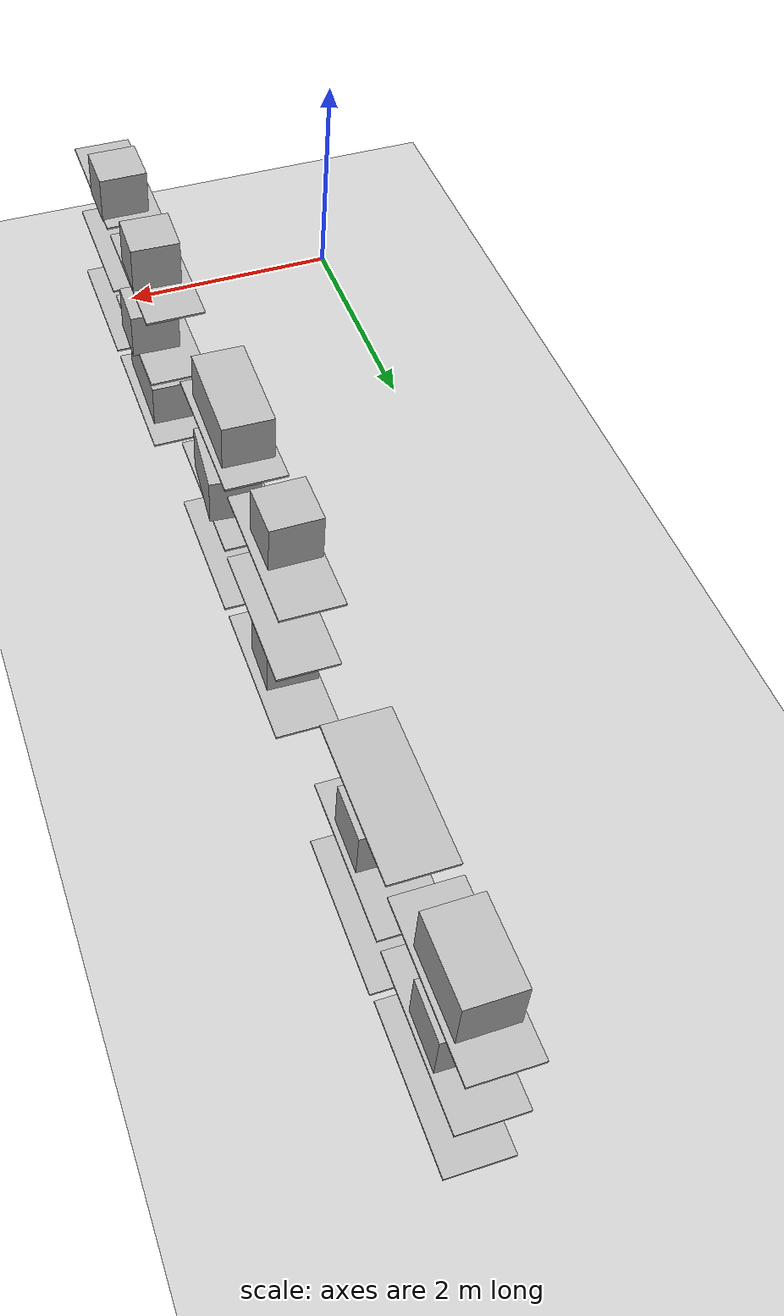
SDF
<sdf version="1.7">
 <world name="default">
  <model name="ground_plane">
   <static>1</static>
   <link name="link">
    <collision name="collision">
     <geometry><plane><normal>0 0 1</normal><size>300 300</size></plane></geometry>
     <surface>
      <contact><collide_bitmask>65535</collide_bitmask></contact>
      <friction><ode><mu>100</mu><mu2>50</mu2></ode></friction>
     </surface>
    </collision>
    <visual name="visual">
     <geometry><plane><normal>0 0 1</normal><size>100 100</size></plane></geometry>
     <material>
      <script><uri>file://media/materials/scripts/gazebo.material</uri><name>Gazebo/Grey</name></script>
     </material>
    </visual>
   </link>
  </model>
  <model name="unit_box">
   <link name="link">
    <inertial>
     <mass>0.00922354</mass>
     <inertia>
      <ixx>0.00104733</ixx>
      <ixy>0</ixy>
      <ixz>0</ixz>
      <iyy>0.000178965</iyy>
      <iyz>0</iyz>
      <izz>0.00122588</izz>
     </inertia>
    </inertial>
    <visual name="visual">
     <geometry><box><size>0.482252 1.16718 0.016436</size></box></geometry>
     <material>
      <script>
       <uri>model://unit_box/materials/scripts</uri>
       <uri>model://unit_box/materials/textures</uri>
       <name>shelveMat/Diffuse</name>
      </script>
      <shader type="pixel"/>
     </material>
    </visual>
    <collision name="collision"><geometry><box><size>0.482252 1.16718 0.016436</size></box></geometry></collision>
   </link>
   <static>1</static>
   <pose>2.18688 8.43309 2.00374 0 -1e-06 -0.002445</pose>
  </model>
  <model name="Caja">
   <link name="link">
    <pose>0 0 0.25 0 -0 0</pose>
    <inertial>
     <mass>0.39</mass>
     <inertia><ixx>0.00058</ixx><ixy>0</ixy><ixz>0</ixz><iyy>0.00058</iyy><iyz>0</iyz><izz>0.00019</izz></inertia>
    </inertial>
    <collision name="collision"><geometry><box><size>0.4 0.4 0.4</size></box></geometry></collision>
    <visual name="visual">
     <geometry><box><size>0.4 0.4 0.4</size></box></geometry>
     <material>
      <script>
       <uri>model://Caja/materials/scripts</uri>
       <uri>model://Caja/materials/textures</uri>
       <name>Caja/Diffuse</name>
      </script>
     </material>
    </visual>
   </link>
   <pose>2.26644 1.06331 1.95102 -7e-06 -1.2e-05 -0.001599</pose>
   <static>1</static>
  </model>
  <model name="CuboQR2">
   <link name="link">
    <pose>0 0 0.25 0 -0 0</pose>
    <inertial>
     <mass>0.39</mass>
     <inertia><ixx>0.00058</ixx><ixy>0</ixy><ixz>0</ixz><iyy>0.00058</iyy><iyz>0</iyz><izz>0.00019</izz></inertia>
    </inertial>
    <collision name="collision"><geometry><box><size>0.4 0.4 0.4</size></box></geometry></collision>
    <visual name="visual">
     <geometry><box><size>0.4 0.4 0.4</size></box></geometry>
     <material>
      <script>
       <uri>model://Caja/materials/scripts</uri>
       <uri>model://Caja/materials/textures</uri>
       <name>Caja/Diffuse</name>
      </script>
     </material>
    </visual>
   </link>
   <pose>2.25333 2.04265 1.96691 8e-06 4.1e-05 -0.030962</pose>
   <static>1</static>
  </model>
  <model name="CuboQR3">
   <link name="link">
    <pose>0 0 0.25 0 -0 0</pose>
    <inertial>
     <mass>0.39</mass>
     <inertia><ixx>0.00058</ixx><ixy>0</ixy><ixz>0</ixz><iyy>0.00058</iyy><iyz>0</iyz><izz>0.00019</izz></inertia>
    </inertial>
    <collision name="collision"><geometry><box><size>0.4 0.4 0.4</size></box></geometry></collision>
    <visual name="visual">
     <geometry><box><size>0.4 0.4 0.4</size></box></geometry>
     <material>
      <script>
       <uri>model://Caja/materials/scripts</uri>
       <uri>model://Caja/materials/textures</uri>
       <name>Caja/Diffuse</name>
      </script>
     </material>
    </visual>
   </link>
   <pose>2.29133 2.04465 1.28252 -1e-06 -8e-06 -0.026338</pose>
   <static>1</static>
  </model>
  <model name="CuboQR5">
   <link name="link">
    <pose>0 0 0.25 0 -0 0</pose>
    <inertial>
     <mass>0.39</mass>
     <inertia><ixx>0.00058</ixx><ixy>0</ixy><ixz>0</ixz><iyy>0.00058</iyy><iyz>0</iyz><izz>0.00019</izz></inertia>
    </inertial>
    <collision name="collision"><geometry><box><size>0.4 0.4 0.4</size></box></geometry></collision>
    <visual name="visual">
     <geometry><box><size>0.4 0.4 0.4</size></box></geometry>
     <material>
      <script>
       <uri>model://Caja/materials/scripts</uri>
       <uri>model://Caja/materials/textures</uri>
       <name>Caja/Diffuse</name>
      </script>
     </material>
    </visual>
   </link>
   <pose>2.20203 8.45266 1.29226 2.2e-05 -5.4e-05 -0.012577</pose>
   <static>1</static>
  </model>
  <model name="CuboQR6">
   <link name="link">
    <pose>0 0 0.25 0 -0 0</pose>
    <inertial>
     <mass>0.39</mass>
     <inertia><ixx>0.00058</ixx><ixy>0</ixy><ixz>0</ixz><iyy>0.00058</iyy><iyz>0</iyz><izz>0.00019</izz></inertia>
    </inertial>
    <collision name="collision"><geometry><box><size>0.4 0.4 0.4</size></box></geometry></collision>
    <visual name="visual">
     <geometry><box><size>0.4 0.4 0.4</size></box></geometry>
     <material>
      <script>
       <uri>model://Caja/materials/scripts</uri>
       <uri>model://Caja/materials/textures</uri>
       <name>Caja/Diffuse</name>
      </script>
     </material>
    </visual>
   </link>
   <pose>2.1851 7.10543 1.28642 2e-06 -1.1e-05 -0.010095</pose>
   <static>1</static>
  </model>
  <model name="CuboQR8">
   <link name="link">
    <pose>0 0 0.25 0 -0 0</pose>
    <inertial>
     <mass>0.39</mass>
     <inertia><ixx>0.00058</ixx><ixy>0</ixy><ixz>0</ixz><iyy>0.00058</iyy><iyz>0</iyz><izz>0.00019</izz></inertia>
    </inertial>
    <collision name="collision"><geometry><box><size>0.4 0.8 0.4</size></box></geometry></collision>
    <visual name="visual">
     <geometry><box><size>0.4 0.8 0.4</size></box></geometry>
     <material>
      <script>
       <uri>model://Caja/materials/scripts</uri>
       <uri>model://Caja/materials/textures</uri>
       <name>Caja/Diffuse</name>
      </script>
     </material>
    </visual>
   </link>
   <pose>2.14027 3.91275 1.94922 1.1e-05 -2e-06 -0.016923</pose>
   <static>1</static>
  </model>
  <model name="CuboQR9">
   <link name="link">
    <pose>0 0 0.25 0 -0 0</pose>
    <inertial>
     <mass>0.39</mass>
     <inertia><ixx>0.00058</ixx><ixy>0</ixy><ixz>0</ixz><iyy>0.00058</iyy><iyz>0</iyz><izz>0.00019</izz></inertia>
    </inertial>
    <collision name="collision"><geometry><box><size>0.4 0.4 0.4</size></box></geometry></collision>
    <visual name="visual">
     <geometry><box><size>0.4 0.4 0.4</size></box></geometry>
     <material>
      <script>
       <uri>model://Caja/materials/scripts</uri>
       <uri>model://Caja/materials/textures</uri>
       <name>Caja/Diffuse</name>
      </script>
     </material>
    </visual>
   </link>
   <pose>2.12545 5.14181 0.595564 -2.3e-05 -4e-06 -0.026435</pose>
   <static>1</static>
  </model>
  <model name="CuboQR10">
   <link name="link">
    <pose>0 0 0.25 0 -0 0</pose>
    <inertial>
     <mass>0.39</mass>
     <inertia><ixx>0.00058</ixx><ixy>0</ixy><ixz>0</ixz><iyy>0.00058</iyy><iyz>0</iyz><izz>0.00019</izz></inertia>
    </inertial>
    <collision name="collision"><geometry><box><size>0.4 0.4 0.4</size></box></geometry></collision>
    <visual name="visual">
     <geometry><box><size>0.4 0.4 0.4</size></box></geometry>
     <material>
      <script>
       <uri>model://Caja/materials/scripts</uri>
       <uri>model://Caja/materials/textures</uri>
       <name>Caja/Diffuse</name>
      </script>
     </material>
    </visual>
   </link>
   <pose>2.12667 5.11458 1.95849 1.8e-05 -7e-06 0.006396</pose>
   <static>1</static>
  </model>
  <model name="CuboQR30">
   <link name="link">
    <pose>0 0 0.25 0 -0 0</pose>
    <inertial>
     <mass>0.39</mass>
     <inertia><ixx>0.00058</ixx><ixy>0</ixy><ixz>0</ixz><iyy>0.00058</iyy><iyz>0</iyz><izz>0.00019</izz></inertia>
    </inertial>
    <collision name="collision"><geometry><box><size>0.4 0.6 0.4</size></box></geometry></collision>
    <visual name="visual">
     <geometry><box><size>0.4 0.6 0.4</size></box></geometry>
     <material>
      <script>
       <uri>model://Caja/materials/scripts</uri>
       <uri>model://Caja/materials/textures</uri>
       <name>Caja/Diffuse</name>
      </script>
     </material>
    </visual>
   </link>
   <pose>2.19014 3.91484 1.28838 1e-05 -7e-06 -0.095429</pose>
   <static>1</static>
  </model>
  <model name="CuboQR32">
   <link name="link">
    <pose>0 0 0.25 0 -0 0</pose>
    <inertial>
     <mass>0.39</mass>
     <inertia><ixx>0.00058</ixx><ixy>0</ixy><ixz>0</ixz><iyy>0.00058</iyy><iyz>0</iyz><izz>0.00019</izz></inertia>
    </inertial>
    <collision name="collision"><geometry><box><size>0.4 0.6 0.4</size></box></geometry></collision>
    <visual name="visual">
     <geometry><box><size>0.4 0.6 0.4</size></box></geometry>
     <material>
      <script>
       <uri>model://Caja/materials/scripts</uri>
       <uri>model://Caja/materials/textures</uri>
       <name>Caja/Diffuse</name>
      </script>
     </material>
    </visual>
   </link>
   <pose>2.19132 8.47328 1.96092 5e-06 -8e-06 0.005056</pose>
   <static>1</static>
  </model>
  <model name="Plano4_0">
   <link name="link">
    <gravity>0</gravity>
    <pose>0 0 0.25 0 -0 0</pose>
    <inertial>
     <mass>1e-06</mass>
     <inertia><ixx>0.00058</ixx><ixy>0</ixy><ixz>0</ixz><iyy>0.00058</iyy><iyz>0</iyz><izz>0.00019</izz></inertia>
    </inertial>
    <collision name="collision"><geometry><box><size>0.2 1e-06 0.2</size></box></geometry></collision>
    <visual name="visual">
     <geometry><box><size>0.2 1e-06 0.2</size></box></geometry>
     <material>
      <script>
       <uri>model://Plano4/materials/scripts</uri>
       <uri>model://Plano4/materials/textures</uri>
       <name>Plano4/Diffuse</name>
      </script>
     </material>
    </visual>
   </link>
   <pose>1.978 2.02492 0.597619 0 0 -1.59006</pose>
  </model>
  <model name="Plano9">
   <link name="link">
    <gravity>0</gravity>
    <pose>0 0 0.25 0 -0 0</pose>
    <inertial>
     <mass>1e-06</mass>
     <inertia><ixx>0.00058</ixx><ixy>0</ixy><ixz>0</ixz><iyy>0.00058</iyy><iyz>0</iyz><izz>0.00019</izz></inertia>
    </inertial>
    <collision name="collision"><geometry><box><size>0.2 1e-06 0.2</size></box></geometry></collision>
    <visual name="visual">
     <geometry><box><size>0.2 1e-06 0.2</size></box></geometry>
     <material>
      <script>
       <uri>model://Plano9/materials/scripts</uri>
       <uri>model://Plano9/materials/textures</uri>
       <name>Plano9/Diffuse</name>
      </script>
     </material>
    </visual>
   </link>
   <pose>1.92313 5.13661 0.621101 0 0 -1.58642</pose>
  </model>
  <model name="CuboQR8_clone_0">
   <link name="link">
    <pose>0 0 0.25 0 -0 0</pose>
    <inertial>
     <mass>0.39</mass>
     <inertia><ixx>0.00058</ixx><ixy>0</ixy><ixz>0</ixz><iyy>0.00058</iyy><iyz>0</iyz><izz>0.00019</izz></inertia>
    </inertial>
    <collision name="collision"><geometry><box><size>0.4 0.8 0.4</size></box></geometry></collision>
    <visual name="visual">
     <geometry><box><size>0.4 0.8 0.4</size></box></geometry>
     <material>
      <script>
       <uri>model://Caja/materials/scripts</uri>
       <uri>model://Caja/materials/textures</uri>
       <name>Caja/Diffuse</name>
      </script>
     </material>
    </visual>
   </link>
   <pose>2.18311 1.99541 0.596214 -1e-05 1e-06 -0.016913</pose>
   <static>1</static>
  </model>
  <model name="Plano5">
   <link name="link">
    <gravity>0</gravity>
    <pose>0 0 0.25 0 -0 0</pose>
    <inertial>
     <mass>1e-06</mass>
     <inertia><ixx>0.00058</ixx><ixy>0</ixy><ixz>0</ixz><iyy>0.00058</iyy><iyz>0</iyz><izz>0.00019</izz></inertia>
    </inertial>
    <collision name="collision"><geometry><box><size>0.2 1e-06 0.2</size></box></geometry></collision>
    <visual name="visual">
     <geometry><box><size>0.2 1e-06 0.2</size></box></geometry>
     <material>
      <script>
       <uri>model://Plano5/materials/scripts</uri>
       <uri>model://Plano5/materials/textures</uri>
       <name>Plano5/Diffuse</name>
      </script>
     </material>
    </visual>
   </link>
   <pose>2.00061 8.43579 1.29742 0 0 -1.58596</pose>
  </model>
  <model name="Plano6">
   <link name="link">
    <gravity>0</gravity>
    <pose>0 0 0.25 0 -0 0</pose>
    <inertial>
     <mass>1e-06</mass>
     <inertia><ixx>0.00058</ixx><ixy>0</ixy><ixz>0</ixz><iyy>0.00058</iyy><iyz>0</iyz><izz>0.00019</izz></inertia>
    </inertial>
    <collision name="collision"><geometry><box><size>0.2 1e-06 0.2</size></box></geometry></collision>
    <visual name="visual">
     <geometry><box><size>0.2 1e-06 0.2</size></box></geometry>
     <material>
      <script>
       <uri>model://Plano6/materials/scripts</uri>
       <uri>model://Plano6/materials/textures</uri>
       <name>Plano6/Diffuse</name>
      </script>
     </material>
    </visual>
   </link>
   <pose>1.9843 7.06559 1.29818 0 0 -1.58047</pose>
  </model>
  <model name="Plano30">
   <link name="link">
    <gravity>0</gravity>
    <pose>0 0 0.25 0 -0 0</pose>
    <inertial>
     <mass>1e-06</mass>
     <inertia><ixx>0.00058</ixx><ixy>0</ixy><ixz>0</ixz><iyy>0.00058</iyy><iyz>0</iyz><izz>0.00019</izz></inertia>
    </inertial>
    <collision name="collision"><geometry><box><size>0.2 1e-06 0.2</size></box></geometry></collision>
    <visual name="visual">
     <geometry><box><size>0.2 1e-06 0.2</size></box></geometry>
     <material>
      <script>
       <uri>model://Plano30/materials/scripts</uri>
       <uri>model://Plano30/materials/textures</uri>
       <name>Plano30/Diffuse</name>
      </script>
     </material>
    </visual>
   </link>
   <pose>1.9915 3.94414 1.31063 0 0 -1.66883</pose>
  </model>
  <model name="Plano3">
   <link name="link">
    <gravity>0</gravity>
    <pose>0 0 0.25 0 -0 0</pose>
    <inertial>
     <mass>1e-06</mass>
     <inertia><ixx>0.00058</ixx><ixy>0</ixy><ixz>0</ixz><iyy>0.00058</iyy><iyz>0</iyz><izz>0.00019</izz></inertia>
    </inertial>
    <collision name="collision"><geometry><box><size>0.2 1e-06 0.2</size></box></geometry></collision>
    <visual name="visual">
     <geometry><box><size>0.2 1e-06 0.2</size></box></geometry>
     <material>
      <script>
       <uri>model://Plano3/materials/scripts</uri>
       <uri>model://Plano3/materials/textures</uri>
       <name>Plano3/Diffuse</name>
      </script>
     </material>
    </visual>
   </link>
   <pose>2.06585 2.0112 1.29904 0 0 -1.60488</pose>
  </model>
  <model name="Plano2">
   <link name="link">
    <gravity>0</gravity>
    <pose>0 0 0.25 0 -0 0</pose>
    <inertial>
     <mass>1e-06</mass>
     <inertia><ixx>0.00058</ixx><ixy>0</ixy><ixz>0</ixz><iyy>0.00058</iyy><iyz>0</iyz><izz>0.00019</izz></inertia>
    </inertial>
    <collision name="collision"><geometry><box><size>0.2 1e-06 0.2</size></box></geometry></collision>
    <visual name="visual">
     <geometry><box><size>0.2 1e-06 0.2</size></box></geometry>
     <material>
      <script>
       <uri>model://Plano2/materials/scripts</uri>
       <uri>model://Plano2/materials/textures</uri>
       <name>Plano2/Diffuse</name>
      </script>
     </material>
    </visual>
   </link>
   <pose>2.05247 2.02975 1.96021 0 0 -1.6005</pose>
  </model>
  <model name="Plano">
   <link name="link">
    <gravity>0</gravity>
    <pose>0 0 0.25 0 -0 0</pose>
    <inertial>
     <mass>1e-06</mass>
     <inertia><ixx>0.00058</ixx><ixy>0</ixy><ixz>0</ixz><iyy>0.00058</iyy><iyz>0</iyz><izz>0.00019</izz></inertia>
    </inertial>
    <collision name="collision"><geometry><box><size>0.2 1e-06 0.2</size></box></geometry></collision>
    <visual name="visual">
     <geometry><box><size>0.2 1e-06 0.2</size></box></geometry>
     <material>
      <script>
       <uri>model://Plano/materials/scripts</uri>
       <uri>model://Plano/materials/textures</uri>
       <name>Plano/Diffuse</name>
      </script>
     </material>
    </visual>
   </link>
   <pose>2.06285 1.03786 1.95496 0 0 -1.57561</pose>
  </model>
  <model name="Plano8">
   <link name="link">
    <gravity>0</gravity>
    <pose>0 0 0.25 0 -0 0</pose>
    <inertial>
     <mass>1e-06</mass>
     <inertia><ixx>0.00058</ixx><ixy>0</ixy><ixz>0</ixz><iyy>0.00058</iyy><iyz>0</iyz><izz>0.00019</izz></inertia>
    </inertial>
    <collision name="collision"><geometry><box><size>0.2 1e-06 0.2</size></box></geometry></collision>
    <visual name="visual">
     <geometry><box><size>0.2 1e-06 0.2</size></box></geometry>
     <material>
      <script>
       <uri>model://Plano8/materials/scripts</uri>
       <uri>model://Plano8/materials/textures</uri>
       <name>Plano8/Diffuse</name>
      </script>
     </material>
    </visual>
   </link>
   <pose>1.93511 3.88666 1.99089 0 0 -1.57894</pose>
  </model>
  <model name="Plano10">
   <link name="link">
    <gravity>0</gravity>
    <pose>0 0 0.25 0 -0 0</pose>
    <inertial>
     <mass>1e-06</mass>
     <inertia><ixx>0.00058</ixx><ixy>0</ixy><ixz>0</ixz><iyy>0.00058</iyy><iyz>0</iyz><izz>0.00019</izz></inertia>
    </inertial>
    <collision name="collision"><geometry><box><size>0.2 1e-06 0.2</size></box></geometry></collision>
    <visual name="visual">
     <geometry><box><size>0.2 1e-06 0.2</size></box></geometry>
     <material>
      <script>
       <uri>model://Plano10/materials/scripts</uri>
       <uri>model://Plano10/materials/textures</uri>
       <name>Plano10/Diffuse</name>
      </script>
     </material>
    </visual>
   </link>
   <pose>1.92521 5.09842 1.98483 0 0 -1.55773</pose>
  </model>
  <model name="Plano32">
   <link name="link">
    <gravity>0</gravity>
    <pose>0 0 0.25 0 -0 0</pose>
    <inertial>
     <mass>1e-06</mass>
     <inertia><ixx>0.00058</ixx><ixy>0</ixy><ixz>0</ixz><iyy>0.00058</iyy><iyz>0</iyz><izz>0.00019</izz></inertia>
    </inertial>
    <collision name="collision"><geometry><box><size>0.2 1e-06 0.2</size></box></geometry></collision>
    <visual name="visual">
     <geometry><box><size>0.2 1e-06 0.2</size></box></geometry>
     <material>
      <script>
       <uri>model://Plano32/materials/scripts</uri>
       <uri>model://Plano32/materials/textures</uri>
       <name>Plano32/Diffuse</name>
      </script>
     </material>
    </visual>
   </link>
   <pose>1.98912 8.41841 1.97803 0 0 -1.58529</pose>
  </model>
  <model name="unit_box_clone">
   <link name="link">
    <inertial>
     <mass>0.00922354</mass>
     <inertia>
      <ixx>0.00104733</ixx>
      <ixy>0</ixy>
      <ixz>0</ixz>
      <iyy>0.000178965</iyy>
      <iyz>0</iyz>
      <izz>0.00122588</izz>
     </inertia>
    </inertial>
    <visual name="visual">
     <geometry><box><size>0.482252 1.16718 0.016436</size></box></geometry>
     <material>
      <script>
       <uri>model://unit_box/materials/scripts</uri>
       <uri>model://unit_box/materials/textures</uri>
       <name>shelveMat/Diffuse</name>
      </script>
      <shader type="pixel"/>
     </material>
    </visual>
    <collision name="collision"><geometry><box><size>0.482252 1.16718 0.016436</size></box></geometry></collision>
   </link>
   <static>1</static>
   <pose>2.16612 7.19524 2.00375 0 -1e-06 -0.002445</pose>
  </model>
  <model name="unit_box_clone_clone">
   <link name="link">
    <inertial>
     <mass>0.00922354</mass>
     <inertia>
      <ixx>0.00104733</ixx>
      <ixy>0</ixy>
      <ixz>0</ixz>
      <iyy>0.000178965</iyy>
      <iyz>0</iyz>
      <izz>0.00122588</izz>
     </inertia>
    </inertial>
    <visual name="visual">
     <geometry><box><size>0.482252 1.16718 0.016436</size></box></geometry>
     <material>
      <script>
       <uri>model://unit_box/materials/scripts</uri>
       <uri>model://unit_box/materials/textures</uri>
       <name>shelveMat/Diffuse</name>
      </script>
      <shader type="pixel"/>
     </material>
    </visual>
    <collision name="collision"><geometry><box><size>0.482252 1.16718 0.016436</size></box></geometry></collision>
   </link>
   <static>1</static>
   <pose>2.15094 5.16802 2.00375 0 -1e-06 -0.002445</pose>
  </model>
  <model name="unit_box_clone_clone_clone">
   <link name="link">
    <inertial>
     <mass>0.00922354</mass>
     <inertia>
      <ixx>0.00104733</ixx>
      <ixy>0</ixy>
      <ixz>0</ixz>
      <iyy>0.000178965</iyy>
      <iyz>0</iyz>
      <izz>0.00122588</izz>
     </inertia>
    </inertial>
    <visual name="visual">
     <geometry><box><size>0.482252 1.16718 0.016436</size></box></geometry>
     <material>
      <script>
       <uri>model://unit_box/materials/scripts</uri>
       <uri>model://unit_box/materials/textures</uri>
       <name>shelveMat/Diffuse</name>
      </script>
      <shader type="pixel"/>
     </material>
    </visual>
    <collision name="collision"><geometry><box><size>0.482252 1.16718 0.016436</size></box></geometry></collision>
   </link>
   <static>1</static>
   <pose>2.14649 3.9345 2.00375 0 -1e-06 -0.002445</pose>
  </model>
  <model name="unit_box_clone_clone_clone_clone">
   <link name="link">
    <inertial>
     <mass>0.00922354</mass>
     <inertia>
      <ixx>0.00104733</ixx>
      <ixy>0</ixy>
      <ixz>0</ixz>
      <iyy>0.000178965</iyy>
      <iyz>0</iyz>
      <izz>0.00122588</izz>
     </inertia>
    </inertial>
    <visual name="visual">
     <geometry><box><size>0.482252 1.16718 0.016436</size></box></geometry>
     <material>
      <script>
       <uri>model://unit_box/materials/scripts</uri>
       <uri>model://unit_box/materials/textures</uri>
       <name>shelveMat/Diffuse</name>
      </script>
      <shader type="pixel"/>
     </material>
    </visual>
    <collision name="collision"><geometry><box><size>0.482252 1.16718 0.016436</size></box></geometry></collision>
   </link>
   <static>1</static>
   <pose>2.21591 2.05831 2.00375 0 -1e-06 -0.002445</pose>
  </model>
  <model name="unit_box_clone_clone_clone_clone_0">
   <link name="link">
    <inertial>
     <mass>0.00922354</mass>
     <inertia>
      <ixx>0.00104733</ixx>
      <ixy>0</ixy>
      <ixz>0</ixz>
      <iyy>0.000178965</iyy>
      <iyz>0</iyz>
      <izz>0.00122588</izz>
     </inertia>
    </inertial>
    <visual name="visual">
     <geometry><box><size>0.482252 1.16718 0.016436</size></box></geometry>
     <material>
      <script>
       <uri>model://unit_box/materials/scripts</uri>
       <uri>model://unit_box/materials/textures</uri>
       <name>shelveMat/Diffuse</name>
      </script>
      <shader type="pixel"/>
     </material>
    </visual>
    <collision name="collision"><geometry><box><size>0.482252 1.16718 0.016436</size></box></geometry></collision>
   </link>
   <static>1</static>
   <pose>2.21542 0.798436 2.00375 0 -1e-06 -0.002445</pose>
  </model>
  <model name="unit_box_clone_clone_clone_clone_1">
   <link name="link">
    <inertial>
     <mass>0.00922354</mass>
     <inertia>
      <ixx>0.00104733</ixx>
      <ixy>0</ixy>
      <ixz>0</ixz>
      <iyy>0.000178965</iyy>
      <iyz>0</iyz>
      <izz>0.00122588</izz>
     </inertia>
    </inertial>
    <visual name="visual">
     <geometry><box><size>0.482252 1.16718 0.016436</size></box></geometry>
     <material>
      <script>
       <uri>model://unit_box/materials/scripts</uri>
       <uri>model://unit_box/materials/textures</uri>
       <name>shelveMat/Diffuse</name>
      </script>
      <shader type="pixel"/>
     </material>
    </visual>
    <collision name="collision"><geometry><box><size>0.482252 1.16718 0.016436</size></box></geometry></collision>
   </link>
   <static>1</static>
   <pose>2.1868 8.43502 1.33671 0 -1e-06 -0.002445</pose>
  </model>
  <model name="unit_box_clone_clone_clone_clone_1_clone">
   <link name="link">
    <inertial>
     <mass>0.00922354</mass>
     <inertia>
      <ixx>0.00104733</ixx>
      <ixy>0</ixy>
      <ixz>0</ixz>
      <iyy>0.000178965</iyy>
      <iyz>0</iyz>
      <izz>0.00122588</izz>
     </inertia>
    </inertial>
    <visual name="visual">
     <geometry><box><size>0.482252 1.16718 0.016436</size></box></geometry>
     <material>
      <script>
       <uri>model://unit_box/materials/scripts</uri>
       <uri>model://unit_box/materials/textures</uri>
       <name>shelveMat/Diffuse</name>
      </script>
      <shader type="pixel"/>
     </material>
    </visual>
    <collision name="collision"><geometry><box><size>0.482252 1.16718 0.016436</size></box></geometry></collision>
   </link>
   <static>1</static>
   <pose>2.18219 7.19631 1.33212 0 -1e-06 -0.002445</pose>
  </model>
  <model name="unit_box_clone_clone_clone_clone_1_clone_0">
   <link name="link">
    <inertial>
     <mass>0.00922354</mass>
     <inertia>
      <ixx>0.00104733</ixx>
      <ixy>0</ixy>
      <ixz>0</ixz>
      <iyy>0.000178965</iyy>
      <iyz>0</iyz>
      <izz>0.00122588</izz>
     </inertia>
    </inertial>
    <visual name="visual">
     <geometry><box><size>0.482252 1.16718 0.016436</size></box></geometry>
     <material>
      <script>
       <uri>model://unit_box/materials/scripts</uri>
       <uri>model://unit_box/materials/textures</uri>
       <name>shelveMat/Diffuse</name>
      </script>
      <shader type="pixel"/>
     </material>
    </visual>
    <collision name="collision"><geometry><box><size>0.482252 1.16718 0.016436</size></box></geometry></collision>
   </link>
   <static>1</static>
   <pose>2.15829 5.15878 1.33212 0 -1e-06 -0.002445</pose>
  </model>
  <model name="unit_box_clone_clone_clone_clone_1_clone_1">
   <link name="link">
    <inertial>
     <mass>0.00922354</mass>
     <inertia>
      <ixx>0.00104733</ixx>
      <ixy>0</ixy>
      <ixz>0</ixz>
      <iyy>0.000178965</iyy>
      <iyz>0</iyz>
      <izz>0.00122588</izz>
     </inertia>
    </inertial>
    <visual name="visual">
     <geometry><box><size>0.482252 1.16718 0.016436</size></box></geometry>
     <material>
      <script>
       <uri>model://unit_box/materials/scripts</uri>
       <uri>model://unit_box/materials/textures</uri>
       <name>shelveMat/Diffuse</name>
      </script>
      <shader type="pixel"/>
     </material>
    </visual>
    <collision name="collision"><geometry><box><size>0.482252 1.16718 0.016436</size></box></geometry></collision>
   </link>
   <static>1</static>
   <pose>2.15029 3.92045 1.33212 0 -1e-06 -0.002445</pose>
  </model>
  <model name="unit_box_clone_clone_clone_clone_1_clone_2">
   <link name="link">
    <inertial>
     <mass>0.00922354</mass>
     <inertia>
      <ixx>0.00104733</ixx>
      <ixy>0</ixy>
      <ixz>0</ixz>
      <iyy>0.000178965</iyy>
      <iyz>0</iyz>
      <izz>0.00122588</izz>
     </inertia>
    </inertial>
    <visual name="visual">
     <geometry><box><size>0.482252 1.16718 0.016436</size></box></geometry>
     <material>
      <script>
       <uri>model://unit_box/materials/scripts</uri>
       <uri>model://unit_box/materials/textures</uri>
       <name>shelveMat/Diffuse</name>
      </script>
      <shader type="pixel"/>
     </material>
    </visual>
    <collision name="collision"><geometry><box><size>0.482252 1.16718 0.016436</size></box></geometry></collision>
   </link>
   <static>1</static>
   <pose>2.20388 2.04169 1.33212 0 -1e-06 -0.002445</pose>
  </model>
  <model name="unit_box_clone_clone_clone_clone_1_clone_3">
   <link name="link">
    <inertial>
     <mass>0.00922354</mass>
     <inertia>
      <ixx>0.00104733</ixx>
      <ixy>0</ixy>
      <ixz>0</ixz>
      <iyy>0.000178965</iyy>
      <iyz>0</iyz>
      <izz>0.00122588</izz>
     </inertia>
    </inertial>
    <visual name="visual">
     <geometry><box><size>0.482252 1.16718 0.016436</size></box></geometry>
     <material>
      <script>
       <uri>model://unit_box/materials/scripts</uri>
       <uri>model://unit_box/materials/textures</uri>
       <name>shelveMat/Diffuse</name>
      </script>
      <shader type="pixel"/>
     </material>
    </visual>
    <collision name="collision"><geometry><box><size>0.482252 1.16718 0.016436</size></box></geometry></collision>
   </link>
   <static>1</static>
   <pose>2.20901 0.812092 1.33212 0 -1e-06 -0.002445</pose>
  </model>
  <model name="unit_box_clone_clone_clone_clone_1_clone_4">
   <link name="link">
    <inertial>
     <mass>0.00922354</mass>
     <inertia>
      <ixx>0.00104733</ixx>
      <ixy>0</ixy>
      <ixz>0</ixz>
      <iyy>0.000178965</iyy>
      <iyz>0</iyz>
      <izz>0.00122588</izz>
     </inertia>
    </inertial>
    <visual name="visual">
     <geometry><box><size>0.482252 1.16718 0.016436</size></box></geometry>
     <material>
      <script>
       <uri>model://unit_box/materials/scripts</uri>
       <uri>model://unit_box/materials/textures</uri>
       <name>shelveMat/Diffuse</name>
      </script>
      <shader type="pixel"/>
     </material>
    </visual>
    <collision name="collision"><geometry><box><size>0.482252 1.16718 0.016436</size></box></geometry></collision>
   </link>
   <static>1</static>
   <pose>2.18608 8.43014 0.642962 0 -1e-06 -0.002445</pose>
  </model>
  <model name="unit_box_clone_clone_clone_clone_1_clone_4_clone">
   <link name="link">
    <inertial>
     <mass>0.00922354</mass>
     <inertia>
      <ixx>0.00104733</ixx>
      <ixy>0</ixy>
      <ixz>0</ixz>
      <iyy>0.000178965</iyy>
      <iyz>0</iyz>
      <izz>0.00122588</izz>
     </inertia>
    </inertial>
    <visual name="visual">
     <geometry><box><size>0.482252 1.16718 0.016436</size></box></geometry>
     <material>
      <script>
       <uri>model://unit_box/materials/scripts</uri>
       <uri>model://unit_box/materials/textures</uri>
       <name>shelveMat/Diffuse</name>
      </script>
      <shader type="pixel"/>
     </material>
    </visual>
    <collision name="collision"><geometry><box><size>0.482252 1.16718 0.016436</size></box></geometry></collision>
   </link>
   <static>1</static>
   <pose>2.19586 7.2135 0.642962 0 -1e-06 -0.002445</pose>
  </model>
  <model name="unit_box_clone_clone_clone_clone_1_clone_4_clone_0">
   <link name="link">
    <inertial>
     <mass>0.00922354</mass>
     <inertia>
      <ixx>0.00104733</ixx>
      <ixy>0</ixy>
      <ixz>0</ixz>
      <iyy>0.000178965</iyy>
      <iyz>0</iyz>
      <izz>0.00122588</izz>
     </inertia>
    </inertial>
    <visual name="visual">
     <geometry><box><size>0.482252 1.16718 0.016436</size></box></geometry>
     <material>
      <script>
       <uri>model://unit_box/materials/scripts</uri>
       <uri>model://unit_box/materials/textures</uri>
       <name>shelveMat/Diffuse</name>
      </script>
      <shader type="pixel"/>
     </material>
    </visual>
    <collision name="collision"><geometry><box><size>0.482252 1.16718 0.016436</size></box></geometry></collision>
   </link>
   <static>1</static>
   <pose>2.15478 5.17009 0.642962 0 -1e-06 -0.002445</pose>
  </model>
  <model name="unit_box_clone_clone_clone_clone_1_clone_4_clone_1">
   <link name="link">
    <inertial>
     <mass>0.00922354</mass>
     <inertia>
      <ixx>0.00104733</ixx>
      <ixy>0</ixy>
      <ixz>0</ixz>
      <iyy>0.000178965</iyy>
      <iyz>0</iyz>
      <izz>0.00122588</izz>
     </inertia>
    </inertial>
    <visual name="visual">
     <geometry><box><size>0.482252 1.16718 0.016436</size></box></geometry>
     <material>
      <script>
       <uri>model://unit_box/materials/scripts</uri>
       <uri>model://unit_box/materials/textures</uri>
       <name>shelveMat/Diffuse</name>
      </script>
      <shader type="pixel"/>
     </material>
    </visual>
    <collision name="collision"><geometry><box><size>0.482252 1.16718 0.016436</size></box></geometry></collision>
   </link>
   <static>1</static>
   <pose>2.16038 3.92526 0.645746 0 -1e-06 -0.002445</pose>
  </model>
  <model name="unit_box_clone_clone_clone_clone_1_clone_4_clone_2">
   <link name="link">
    <inertial>
     <mass>0.00922354</mass>
     <inertia>
      <ixx>0.00104733</ixx>
      <ixy>0</ixy>
      <ixz>0</ixz>
      <iyy>0.000178965</iyy>
      <iyz>0</iyz>
      <izz>0.00122588</izz>
     </inertia>
    </inertial>
    <visual name="visual">
     <geometry><box><size>0.482252 1.16718 0.016436</size></box></geometry>
     <material>
      <script>
       <uri>model://unit_box/materials/scripts</uri>
       <uri>model://unit_box/materials/textures</uri>
       <name>shelveMat/Diffuse</name>
      </script>
      <shader type="pixel"/>
     </material>
    </visual>
    <collision name="collision"><geometry><box><size>0.482252 1.16718 0.016436</size></box></geometry></collision>
   </link>
   <static>1</static>
   <pose>2.21433 2.05963 0.642962 0 -1e-06 -0.002445</pose>
  </model>
  <model name="unit_box_clone_clone_clone_clone_1_clone_4_clone_3">
   <link name="link">
    <inertial>
     <mass>0.00922354</mass>
     <inertia>
      <ixx>0.00104733</ixx>
      <ixy>0</ixy>
      <ixz>0</ixz>
      <iyy>0.000178965</iyy>
      <iyz>0</iyz>
      <izz>0.00122588</izz>
     </inertia>
    </inertial>
    <visual name="visual">
     <geometry><box><size>0.482252 1.16718 0.016436</size></box></geometry>
     <material>
      <script>
       <uri>model://unit_box/materials/scripts</uri>
       <uri>model://unit_box/materials/textures</uri>
       <name>shelveMat/Diffuse</name>
      </script>
      <shader type="pixel"/>
     </material>
    </visual>
    <collision name="collision"><geometry><box><size>0.482252 1.16718 0.016436</size></box></geometry></collision>
   </link>
   <static>1</static>
   <pose>2.21589 0.810999 0.642962 0 -1e-06 -0.002445</pose>
  </model>
 </world>
</sdf>
